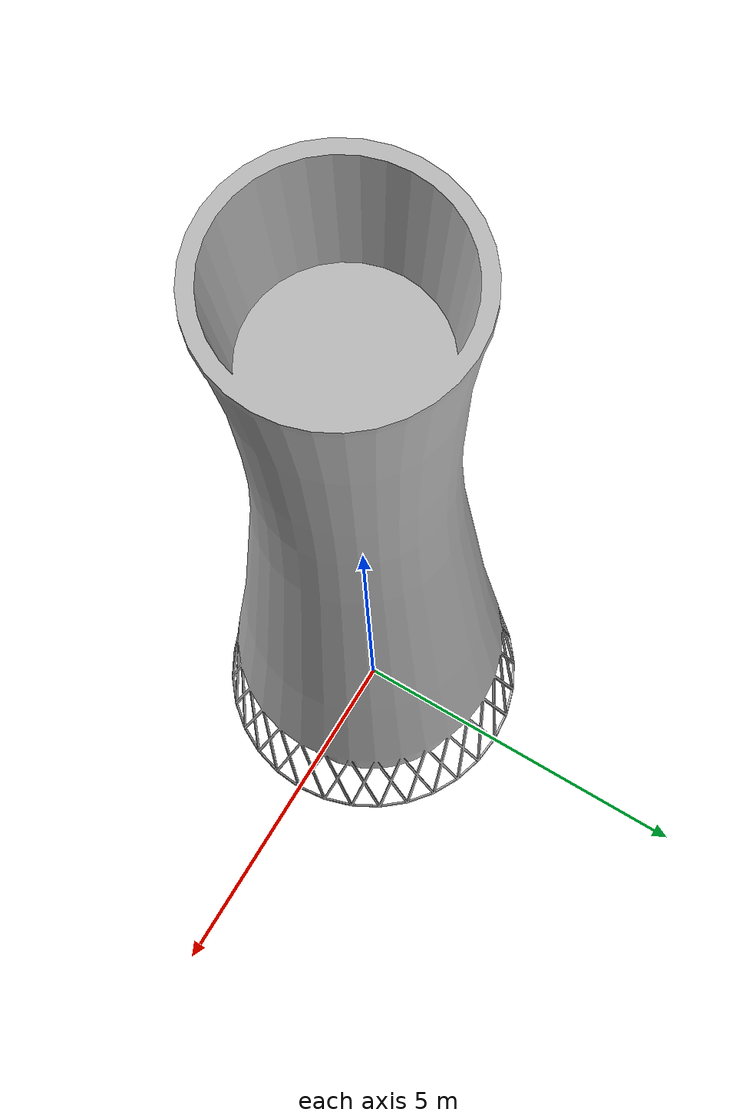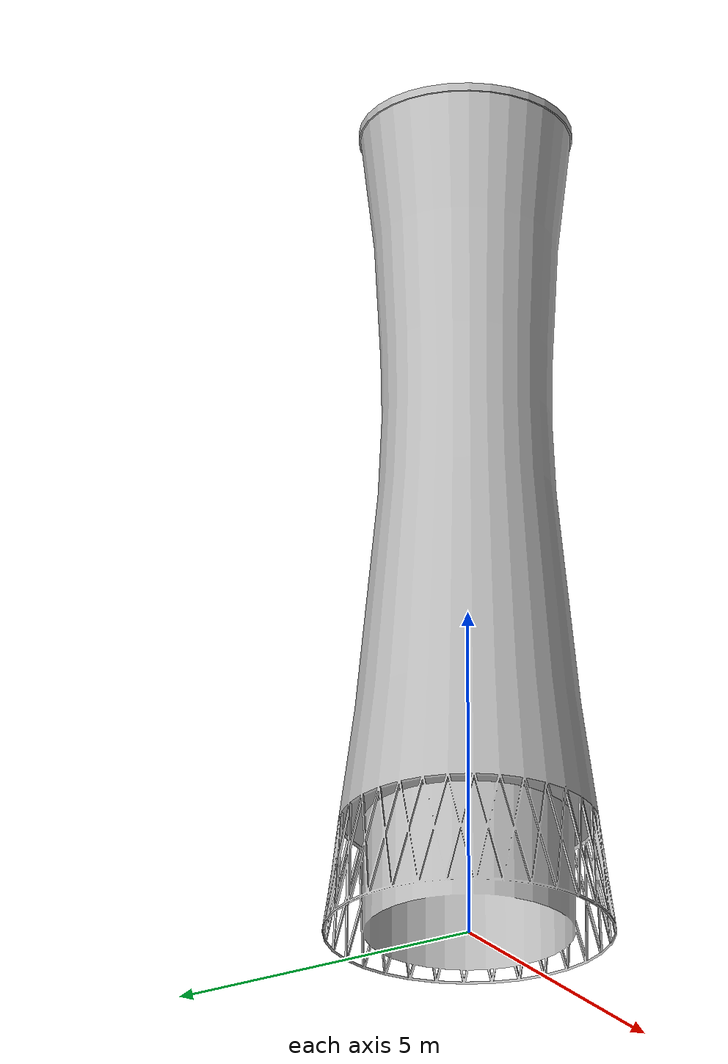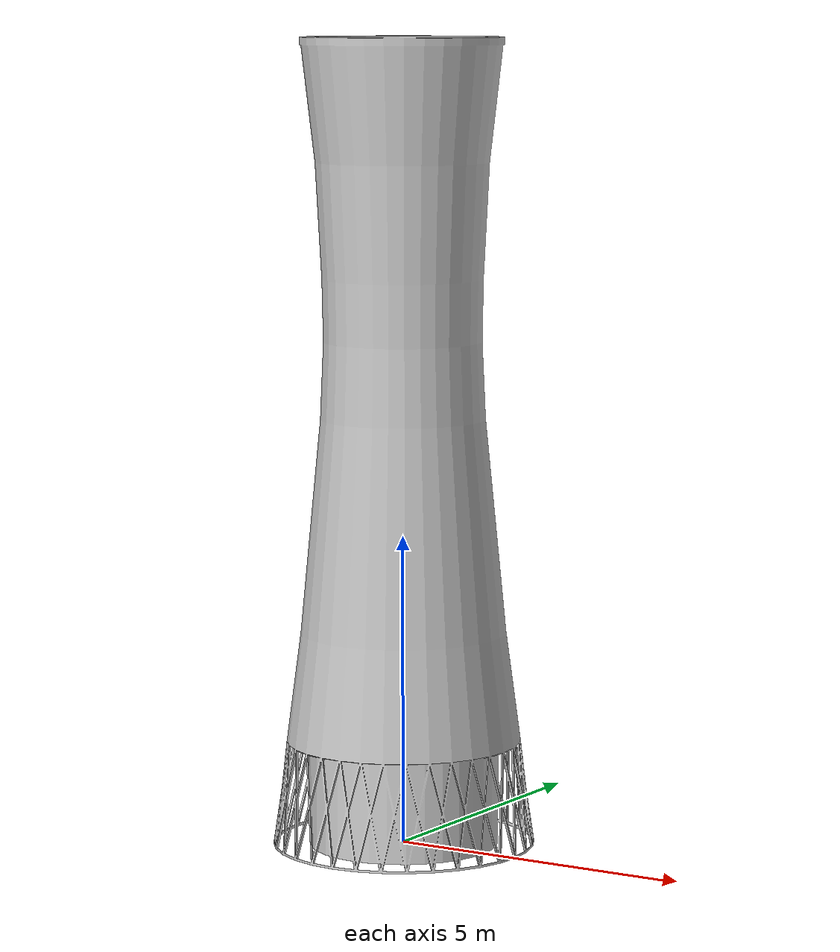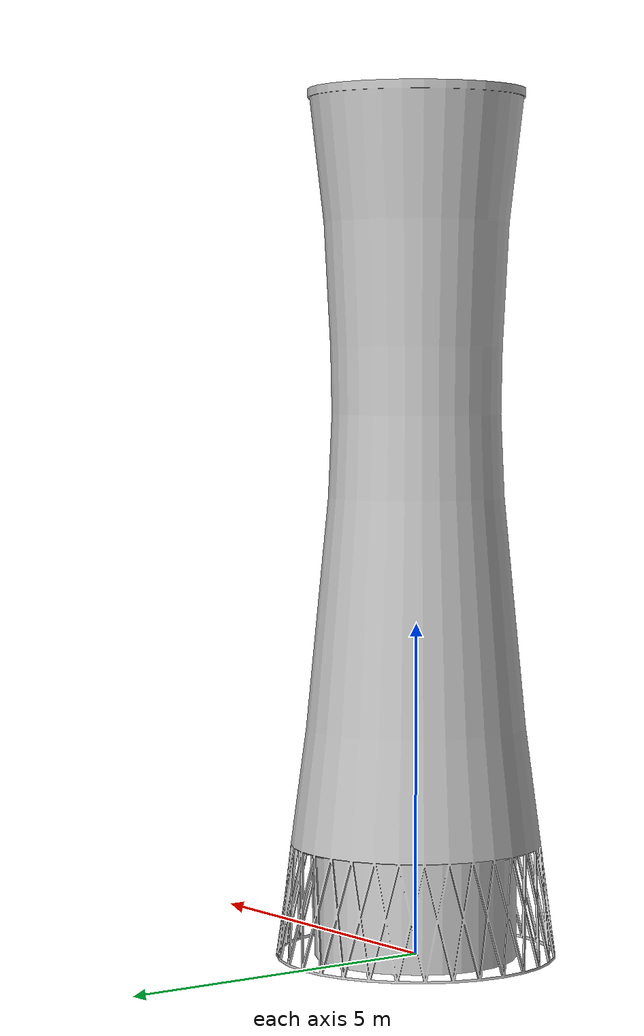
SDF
<?xml version="1.0" ?>
<sdf version="1.6">
  <model name="reactor">
    <static>true</static>
    <link name="link">
      <collision name="collision">
        <geometry>
          <mesh>
            <uri>model://reactor/meshes/reactor.dae</uri>
	    <scale>0.2 0.2 0.5 </scale>
          </mesh>
        </geometry>
      </collision>
      <visual name="visual">
        <geometry>
          <mesh>
            <uri>model://reactor/meshes/reactor.dae</uri>
	    <scale>0.2 0.2 0.5 </scale>
          </mesh>
        </geometry>
      </visual>
    </link>
  </model>
</sdf>
